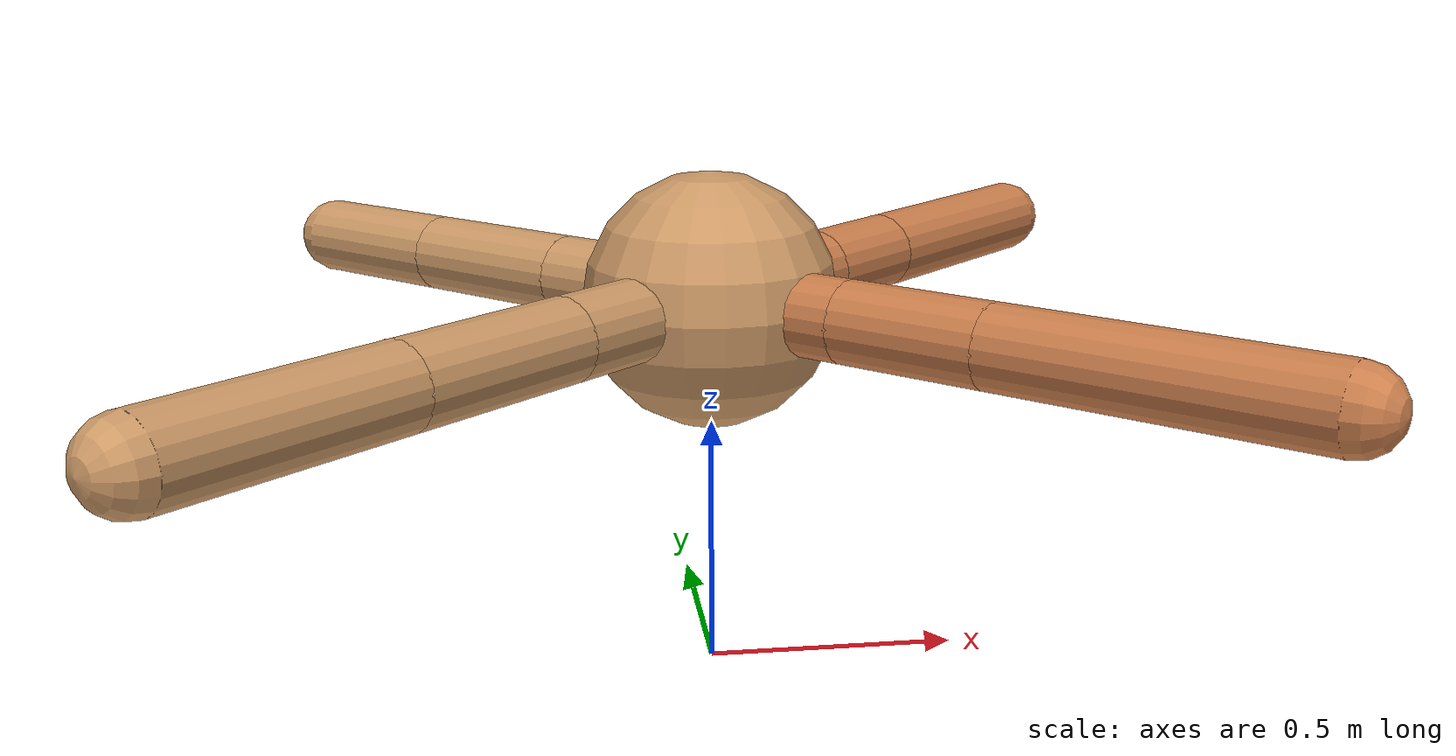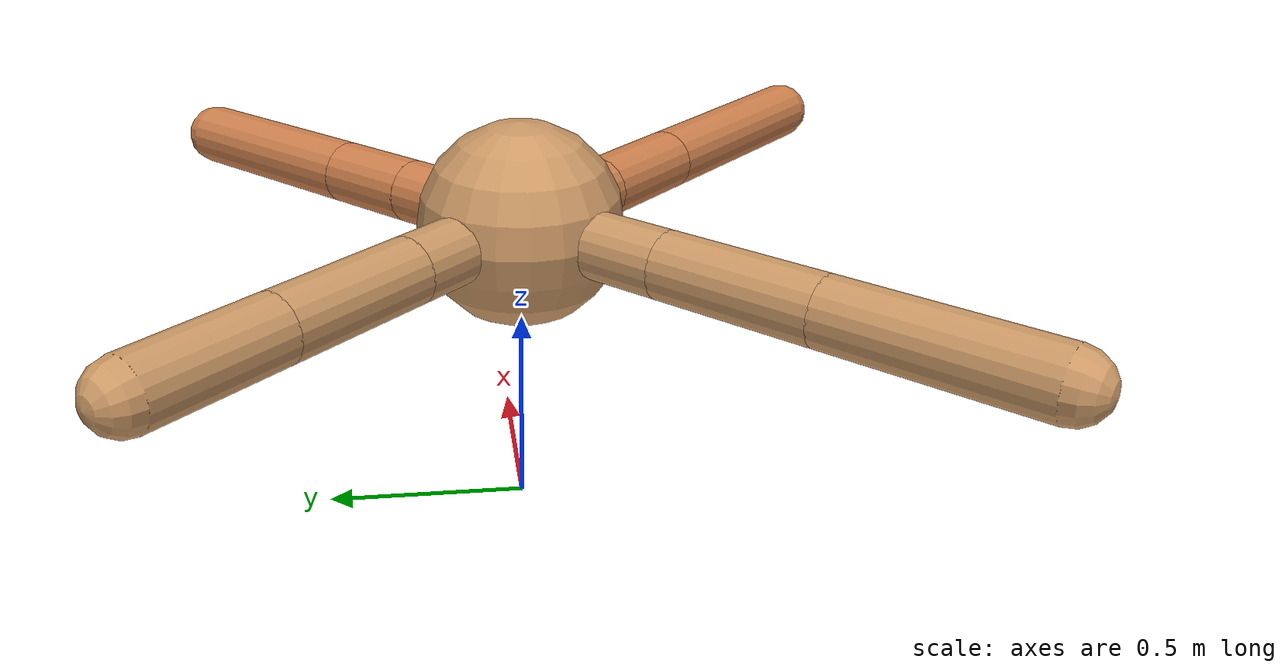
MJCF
<mujoco model="ant">
  <compiler angle="degree" coordinate="local" inertiafromgeom="true" />
  <option integrator="RK4" timestep="0.01" />
  <custom>
    <numeric data="0.0 0.0 0.55 1.0 0.0 0.0 0.0 0.0 1.0 0.0 -1.0 0.0 -1.0 0.0 1.0" name="init_qpos" />
  </custom>
  <default>
    <joint armature="1" damping="1" limited="true" />
    <geom conaffinity="0" condim="3" density="5.0" friction="1.5 0.1 0.1" margin="0.01" rgba="0.8 0.6 0.4 1" />
  </default>
  <worldbody>
    <body name="torso" pos="0 0 0.75">
      <geom name="torso_geom" pos="0 0 0" size="0.25" type="sphere" />

      <body name="front_left_leg" pos="0 0 0">
        <geom fromto="0.0 0.0 0.0 0.25556402115041504 0.25556402115041504 0.0" name="aux_1_geom" size="0.08" type="capsule" rgba=".8 .5 .3 1" />
        <body name="aux_1" pos="0.25556402115041504 0.25556402115041504 0.0">
          <joint axis="0 0 1" name="hip_1" pos="0.0 0.0 0.0" range="-40 40" type="hinge" />
          <geom fromto="0.0 0.0 0.0 0.1717820527626006 0.1717820527626006 0.0" name="left_leg_geom" size="0.08" type="capsule" rgba=".8 .5 .3 1" />
          <body pos="0.1717820527626006 0.1717820527626006 0.0" name="front_left_foot">
            <joint axis="-1 1 0" name="ankle_1" pos="0.0 0.0 0.0" range="30 100" type="hinge" />
            <geom fromto="0.0 0.0 0.0 0.39140003849820104 0.39140003849820104 0.0" name="left_ankle_geom" size="0.08" type="capsule" rgba=".8 .5 .3 1" />
          </body>
        </body>
      </body>
      <body name="front_right_leg" pos="0 0 0">
        <geom fromto="0.0 0.0 0.0 -0.2682658112916071 0.2682658112916071 0.0" name="aux_2_geom" size="0.08" type="capsule" />
        <body name="aux_2" pos="-0.2682658112916071 0.2682658112916071 0.0">
          <joint axis="0 0 1" name="hip_2" pos="0.0 0.0 0.0" range="-40 40" type="hinge" />
          <geom fromto="0.0 0.0 0.0 -0.2623460777362689 0.2623460777362689 0.0" name="right_leg_geom" size="0.08" type="capsule" />
          <body pos="-0.2623460777362689 0.2623460777362689 0.0" name="front_right_foot">
            <joint axis="1 1 0" name="ankle_2" pos="0.0 0.0 0.0" range="-100 -30" type="hinge" />
            <geom fromto="0.0 0.0 0.0 -0.24622609915327576 0.24622609915327576 0.0" name="right_ankle_geom" size="0.08" type="capsule" />
          </body>
        </body>
      </body>
      <body name="left_back_leg" pos="0 0 0">
        <geom fromto="0.0 0.0 0.0 -0.29322228221085633 -0.29322228221085633 0.0" name="aux_3_geom" size="0.08" type="capsule" />
        <body name="aux_3" pos="-0.29322228221085633 -0.29322228221085633 0.0">
          <joint axis="0 0 1" name="hip_3" pos="0.0 0.0 0.0" range="-40 40" type="hinge" />
          <geom fromto="0.0 0.0 0.0 -0.2711766863318835 -0.2711766863318835 0.0" name="back_leg_geom" size="0.08" type="capsule" />
          <body pos="-0.2711766863318835 -0.2711766863318835 0.0" name="left_back_foot">
            <joint axis="-1 1 0" name="ankle_3" pos="0.0 0.0 0.0" range="-100 -30" type="hinge" />
            <geom fromto="0.0 0.0 0.0 -0.35069808212064985 -0.35069808212064985 0.0" name="third_ankle_geom" size="0.08" type="capsule" />
          </body>
        </body>
      </body>
      <body name="right_back_leg" pos="0 0 0">
        <geom fromto="0.0 0.0 0.0 0.2275626128606586 -0.2275626128606586 0.0" name="aux_4_geom" size="0.08" type="capsule" rgba=".8 .5 .3 1" />
        <body name="aux_4" pos="0.2275626128606586 -0.2275626128606586 0.0">
          <joint axis="0 0 1" name="hip_4" pos="0.0 0.0 0.0" range="-40 40" type="hinge" />
          <geom fromto="0.0 0.0 0.0 0.2124043396698567 -0.2124043396698567 0.0" name="rightback_leg_geom" size="0.08" type="capsule" rgba=".8 .5 .3 1" />
          <body pos="0.2124043396698567 -0.2124043396698567 0.0" name="right_back_foot">
            <joint axis="1 1 0" name="ankle_4" pos="0.0 0.0 0.0" range="30 100" type="hinge" />
            <geom fromto="0.0 0.0 0.0 0.44784656223326674 -0.44784656223326674 0.0" name="fourth_ankle_geom" size="0.08" type="capsule" rgba=".8 .5 .3 1" />
          </body>
        </body>
      </body>
    </body>
  </worldbody>
  <actuator>
    <motor ctrllimited="true" ctrlrange="-1.0 1.0" joint="hip_4" gear="150" />
    <motor ctrllimited="true" ctrlrange="-1.0 1.0" joint="ankle_4" gear="150" />
    <motor ctrllimited="true" ctrlrange="-1.0 1.0" joint="hip_1" gear="150" />
    <motor ctrllimited="true" ctrlrange="-1.0 1.0" joint="ankle_1" gear="150" />
    <motor ctrllimited="true" ctrlrange="-1.0 1.0" joint="hip_2" gear="150" />
    <motor ctrllimited="true" ctrlrange="-1.0 1.0" joint="ankle_2" gear="150" />
    <motor ctrllimited="true" ctrlrange="-1.0 1.0" joint="hip_3" gear="150" />
    <motor ctrllimited="true" ctrlrange="-1.0 1.0" joint="ankle_3" gear="150" />
  </actuator>
</mujoco>
